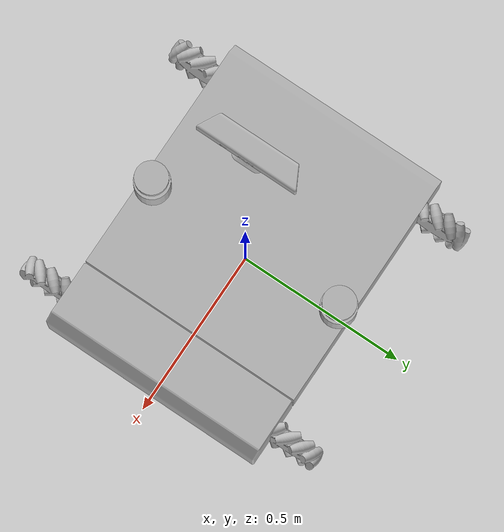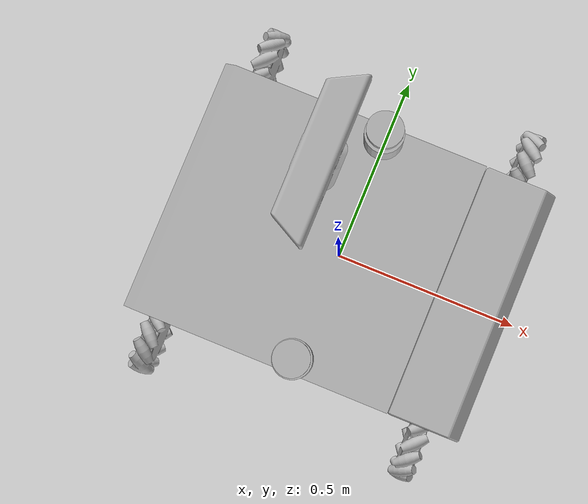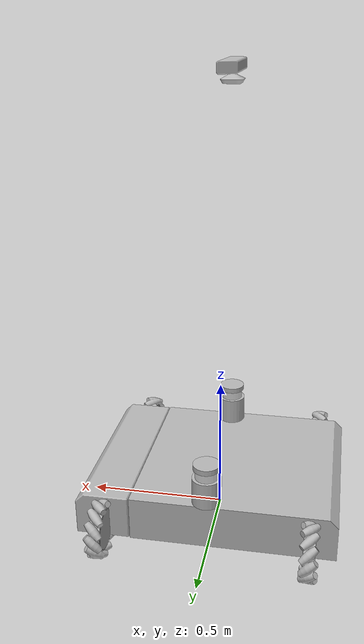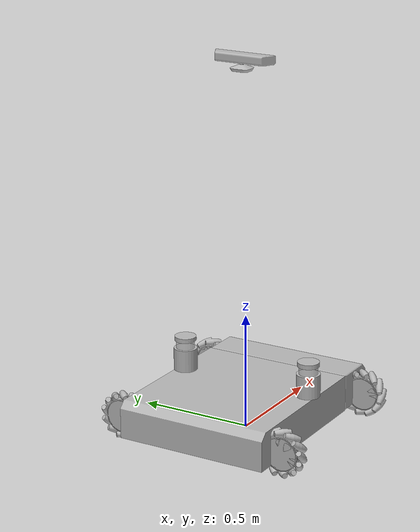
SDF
<?xml version="1.0" ?>
<sdf version="1.6">
	<model name="omnivelma">
		<plugin name="omnivelma" filename="libomnivelma.so"/>
		<pose>0 0 0.1035 0 0 0</pose>
		<static>false</static>

		<!--Baza całości-->
		<link name="base">
			<pose>-0.081 0 0.019 0 0 0</pose>
			<collision name="base_collision">
				<geometry>
					<mesh>
						<uri>model://omnivelma/meshes/collider/base.dae</uri>
					</mesh>
				</geometry>
			</collision>
			<inertial>
				<mass>60</mass>
				<inertia>
					<ixx>2.94</ixx>
					<ixy>0</ixy>
					<ixz>0</ixz>
					<iyy>2.72</iyy>
					<iyz>0</iyz>
					<izz>5.40</izz>
				</inertia>
			</inertial>
			<visual name="base_visual">
				<geometry>
					<mesh>
						<uri>model://omnivelma/meshes/visual/base.dae</uri>
					</mesh>
				</geometry>
				<material>
					<script>
						<uri>model://omnivelma/materials/omnivelma.material</uri>
						<name>omnivelma/base</name>
					</script>
				</material>
			</visual>
		</link>

		<!-- Ruchomy przód -->
		<link name="front">
			<pose>0.364 0 0.018 0 0 0</pose>
			<collision name="front_collision">
				<geometry>
					<mesh>
						<uri>model://omnivelma/meshes/collider/front.dae</uri>
					</mesh>
				</geometry>
			</collision>
			<inertial>
				<mass>15</mass>
				<inertia>
					<ixx>0.7351</ixx>
					<ixy>0</ixy>
					<ixz>0</ixz>
					<iyy>0.0771</iyy>
					<iyz>0</iyz>
					<izz>0.7483</izz>
				</inertia>
			</inertial>
			<visual name="front_visual">
				<geometry>
					<mesh>
						<uri>model://omnivelma/meshes/visual/front.dae</uri>
					</mesh>
				</geometry>
				<material>
					<script>
						<uri>model://omnivelma/materials/omnivelma.material</uri>
						<name>omnivelma/base</name>
					</script>
				</material>
			</visual>
		</link>

		<!-- Czujniki laserowe (TODO pozycje do dokładniejszego dopracowania)-->
		<include>
			<uri>model://monokl</uri>
			<name>monokl_r</name>
			<pose>0 -0.3 0.176 0 0 -3.141592</pose>
		</include>
		<include>
			<uri>model://monokl</uri>
			<name>monokl_l</name>
			<pose>0 0.3 0.176 0 0 0</pose>
		</include>
		<joint name="monokl_r_fix" type="fixed">
			<parent>base</parent>
			<child>monokl_r::base</child>
		</joint>
		<joint name="monokl_l_fix" type="fixed">
			<parent>base</parent>
			<child>monokl_l::base</child>
		</joint>

		<!-- Czujnik inercji -->
		<include>
			<uri>model://wewucho</uri>
			<name>wewucho</name>
			<pose>0 0 0 0 0 0</pose>
		</include>
		<joint name="wewucho_fix" type="fixed">
			<parent>base</parent>
			<child>wewucho::base</child>
		</joint>

		<!-- Koła wirtualne -->
		<link name="wheel_rr">
			<pose>-0.36 -0.38 0 0 0 0</pose>
			<collision name="wheel_rr_collision">
				<geometry>
					<sphere>
						<radius>0.1016</radius>
					</sphere>
				</geometry>
				<surface>
					<friction>
						<ode>
							<mu>0.95</mu>
							<mu2>0.5</mu2>
							<fdir1>0.707106781186548 -0.707106781186548 0</fdir1>
							<slip1>0.001</slip1>
							<slip2>0.1</slip2>
						</ode>
						<bullet>
							<friction>1</friction>
							<friction2>0</friction2>
							<fdir1>0.707106781186548 -0.707106781186548 0</fdir1>
							<rolling_friction>0</rolling_friction>
						</bullet>
					</friction>
				</surface>
			</collision>
			<inertial>
				<mass>1.6</mass>
				<inertia>
					<ixx>0.004738485</ixx>
					<ixy>0</ixy>
					<ixz>0</ixz>
					<iyy>0.008</iyy>
					<iyz>0</iyz>
					<izz>0.004738485</izz>
				</inertia>
			</inertial>
			<visual name="wheel_rr_middle">
				<geometry>
					<mesh>
						<uri>model://omnivelma/meshes/visual/wheel.dae</uri>
					</mesh>
				</geometry>
				<material>
					<script>
						<uri>model://omnivelma/materials/omnivelma.material</uri>
						<name>omnivelma/wheels</name>
					</script>
				</material>
			</visual>
			<visual name="wheel_rr_rollers">
				<geometry>
					<mesh>
						<uri>model://omnivelma/meshes/visual/wheel_l.dae</uri>
					</mesh>
				</geometry>
				<material>
					<script>
						<uri>model://omnivelma/materials/omnivelma.material</uri>
						<name>omnivelma/rollers</name>
					</script>
				</material>
			</visual>
		</link>

		<link name="wheel_rl">
			<pose>-0.36 0.38 0 0 0 0</pose>
			<collision name="wheel_rl_collision">
				<geometry>
					<sphere>
						<radius>0.1016</radius>
					</sphere>
				</geometry>
				<surface>
					<friction>
						<ode>
							<mu>0.95</mu>
							<mu2>0.5</mu2>
							<fdir1>0.707106781186548 0.707106781186548 0</fdir1>
							<slip1>0.001</slip1>
							<slip2>0.1</slip2>
						</ode>
						<bullet>
							<friction>1</friction>
							<friction2>0</friction2>
							<fdir1>0.707106781186548 0.707106781186548 0</fdir1>
							<rolling_friction>0</rolling_friction>
						</bullet>
					</friction>
				</surface>
			</collision>
			<inertial>
				<mass>1.6</mass>
				<inertia>
					<ixx>0.004738485</ixx>
					<ixy>0</ixy>
					<ixz>0</ixz>
					<iyy>0.008</iyy>
					<iyz>0</iyz>
					<izz>0.004738485</izz>
				</inertia>
			</inertial>
			<visual name="wheel_rl_middle">
				<geometry>
					<mesh>
						<uri>model://omnivelma/meshes/visual/wheel.dae</uri>
					</mesh>
				</geometry>
				<material>
					<script>
						<uri>model://omnivelma/materials/omnivelma.material</uri>
						<name>omnivelma/wheels</name>
					</script>
				</material>
			</visual>
			<visual name="wheel_rl_rollers">
				<geometry>
					<mesh>
						<uri>model://omnivelma/meshes/visual/wheel_r.dae</uri>
					</mesh>
				</geometry>
				<material>
					<script>
						<uri>model://omnivelma/materials/omnivelma.material</uri>
						<name>omnivelma/rollers</name>
					</script>
				</material>
			</visual>
		</link>

		<link name="wheel_fr">
			<pose>0.36 -0.38 0 0 0 0</pose>
			<collision name="wheel_fr_collision">
				<geometry>
					<sphere>
						<radius>0.1016</radius>
					</sphere>
				</geometry>
				<surface>
					<friction>
						<ode>
							<mu>0.95</mu>
							<mu2>0.5</mu2>
							<fdir1>-0.707106781186548 -0.707106781186548 0</fdir1>
							<slip1>0.001</slip1>
							<slip2>0.1</slip2>
						</ode>
						<bullet>
							<friction>1</friction>
							<friction2>0</friction2>
							<fdir1>-0.707106781186548 -0.707106781186548 0</fdir1>
							<rolling_friction>0</rolling_friction>
						</bullet>
					</friction>
				</surface>
			</collision>
			<inertial>
				<mass>1.6</mass>
				<inertia>
					<ixx>0.004738485</ixx>
					<ixy>0</ixy>
					<ixz>0</ixz>
					<iyy>0.008</iyy>
					<iyz>0</iyz>
					<izz>0.004738485</izz>
				</inertia>
			</inertial>
			<visual name="wheel_fr_middle">
				<geometry>
					<mesh>
						<uri>model://omnivelma/meshes/visual/wheel.dae</uri>
					</mesh>
				</geometry>
				<material>
					<script>
						<uri>model://omnivelma/materials/omnivelma.material</uri>
						<name>omnivelma/wheels</name>
					</script>
				</material>
			</visual>
			<visual name="wheel_fr_rollers">
				<geometry>
					<mesh>
						<uri>model://omnivelma/meshes/visual/wheel_r.dae</uri>
					</mesh>
				</geometry>
				<material>
					<script>
						<uri>model://omnivelma/materials/omnivelma.material</uri>
						<name>omnivelma/rollers</name>
					</script>
				</material>
			</visual>
		</link>

		<link name="wheel_fl">
			<pose>0.36 0.38 0 0 0 0</pose>
			<collision name="wheel_fl_collision">
				<geometry>
					<sphere>
						<radius>0.1016</radius>
					</sphere>
				</geometry>
				<surface>
					<friction>
						<ode>
							<mu>0.95</mu>
							<mu2>0.5</mu2>
							<fdir1>-0.707106781186548 0.707106781186548 0</fdir1>
							<slip1>0.001</slip1>
							<slip2>0.1</slip2>
						</ode>
						<bullet>
							<friction>1</friction>
							<friction2>0</friction2>
							<fdir1>-0.707106781186548 0.707106781186548 0</fdir1>
							<rolling_friction>0</rolling_friction>
						</bullet>
					</friction>
				</surface>
			</collision>
			<inertial>
				<mass>1.6</mass>
				<inertia>
					<ixx>0.004738485</ixx>
					<ixy>0</ixy>
					<ixz>0</ixz>
					<iyy>0.008</iyy>
					<iyz>0</iyz>
					<izz>0.004738485</izz>
				</inertia>
			</inertial>
			<visual name="wheel_fl_middle">
				<geometry>
					<mesh>
						<uri>model://omnivelma/meshes/visual/wheel.dae</uri>
					</mesh>
				</geometry>
				<material>
					<script>
						<uri>model://omnivelma/materials/omnivelma.material</uri>
						<name>omnivelma/wheels</name>
					</script>
				</material>
			</visual>
			<visual name="wheel_fl_rollers">
				<geometry>
					<mesh>
						<uri>model://omnivelma/meshes/visual/wheel_l.dae</uri>
					</mesh>
				</geometry>
				<material>
					<script>
						<uri>model://omnivelma/materials/omnivelma.material</uri>
						<name>omnivelma/rollers</name>
					</script>
				</material>
			</visual>
		</link>

		<!-- Środkowy przegub (zawias) -->
		<joint name="middle_joint" type="revolute">
			<parent>base</parent>
			<child>front</child>
			<!-- Pozycja względem dziecka -->
			<pose>-0.1 0 -0.018 0 0 0</pose>
			<axis>
				<xyz>1 0 0</xyz>
			</axis>
		</joint>

		<!-- Przeguby kół (motory) -->
		<joint name="motor_rr" type="revolute">
			<parent>base</parent>
			<child>wheel_rr</child>
			<pose>0 0.036 0 0 0 0</pose>
			<axis>
				<xyz>0 1 0</xyz>
			</axis>
		</joint>

		<joint name="motor_rl" type="revolute">
			<parent>base</parent>
			<child>wheel_rl</child>
			<pose>0 -0.036 0 0 0 0</pose>
			<axis>
				<xyz>0 1 0</xyz>
			</axis>
		</joint>

		<joint name="motor_fr" type="revolute">
			<parent>front</parent>
			<child>wheel_fr</child>
			<pose>0 0.036 0 0 0 0</pose>
			<axis>
				<xyz>0 1 0</xyz>
			</axis>
		</joint>

		<joint name="motor_fl" type="revolute">
			<parent>front</parent>
			<child>wheel_fl</child>
			<pose>0 -0.036 0 0 0 0</pose>
			<axis>
				<xyz>0 1 0</xyz>
			</axis>
		</joint>

	<!--KINECT SUBMODEL SECTION-->
	    <include>
			<uri>model://ownKinect</uri>
			<pose>0 0 1.5 0 0 0</pose>
		</include>
		<joint name="kinect_rotator" type="revolute">
			<parent>base</parent>
			<child>ownKinect::kinect_base</child>
			<pose>-0.031 0 -0.055 0 0 0</pose>
			<axis>
				<xyz>0 0 1</xyz>
			</axis>
		</joint>
	</model>
</sdf>

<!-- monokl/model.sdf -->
<sdf version="1.6">
    <model name="monokl">

        <!--Korpus-->
        <link name="base">
            <pose>0 0 0 0 0 0</pose>
            <inertial>
				<mass>1.1</mass>
				<inertia>
					<ixx>0.00283314166</ixx>
					<ixy>0</ixy>
					<ixz>0</ixz>
					<iyy>0.00283314166</iyy>
					<iyz>0</iyz>
					<izz>0.00143055</izz>
				</inertia>
			</inertial>
            <collision name="base_collision">
				<pose>0 0 0 0 0 0</pose>
                <geometry>
					<cylinder>
						<radius>0.051</radius>
						<length>0.152</length>
					</cylinder>
                </geometry>
            </collision>
			<visual name="base_visual">
				<pose>0 0 -0.027 0 0 0</pose>
				<geometry>
					<cylinder>
						<radius>0.051</radius>
						<length>0.098</length>
					</cylinder>
				</geometry>
				<material>
					<script>
						<uri>model://monokl/materials/monokl.material</uri>
						<name>monokl/base</name>
					</script>
				</material>
			</visual>
			<visual name="cap_visual">
				<pose>0 0 0.066 0 0 0</pose>
				<geometry>
					<cylinder>
						<radius>0.047</radius>
						<length>0.019</length>
					</cylinder>
				</geometry>
				<material>
					<script>
						<uri>model://monokl/materials/monokl.material</uri>
						<name>monokl/base</name>
					</script>
				</material>
			</visual>
        </link>
		<link name="heart">
			<pose>0 0 0.039 0 0 0</pose>
			<inertial>
				<mass>0.05</mass>
				<inertia>
					<ixx>0.0000008333</ixx>
					<ixy>0</ixy>
					<ixz>0</ixz>
					<iyy>0.0000008333</iyy>
					<iyz>0</iyz>
					<izz>0.0000008333</izz>
				</inertia>
			</inertial>
			<visual name="glass_visual">
				<geometry>
					<cylinder>
						<radius>0.040</radius>
						<length>0.040</length>
					</cylinder>
				</geometry>
				<material>
					<script>
						<uri>model://monokl/materials/monokl.material</uri>
						<name>monokl/glass</name>
					</script>
				</material>
			</visual>
			<sensor name="monokl" type="ray">
				<update_rate>50</update_rate>
				<visualize>false</visualize>
				<topic>/monokl</topic>
				<plugin name="monokl" filename="libmonokl.so"/>
				<ray>
					<scan>
						<horizontal>
							<!-- tryb 50Hz, 270°, próbka co 0,5° -->
							<samples>540</samples>
							<resolution>1</resolution>
							<min_angle>-0.7853982</min_angle>
							<max_angle>3.926991</max_angle>
						</horizontal>
					</scan>
					<range>
						<min>0.06</min>
						<max>20</max>
						<!-- TODO rozdzielczość liniowa? -->
					</range>
					<noise>
						<type>gaussian</type>
						<mean>0.0</mean>
						<stddev>0.012</stddev>
					</noise>
				</ray>
			</sensor>
		</link>
		<joint name="heart_fix" type="fixed">
			<parent>base</parent>
			<child>heart</child>
		</joint>
    </model>
</sdf>

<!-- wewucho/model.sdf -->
<sdf version="1.6">
	<model name="wewucho">

		<!--Korpus-->
		<link name="base">
			<pose>0 0 0 0 0 0</pose>
			<visual name="base_visual">
				<pose>0 0 0 0 0 0</pose>
				<geometry>
					<box>
						<size>0.02 0.02 0.02</size>
					</box>
				</geometry>
				<material>
					<script>
						<uri>model://wewucho/materials/wewucho.material</uri>
						<name>wewucho/base</name>
					</script>
				</material>
			</visual>
			<sensor name="wewucho" type="imu">
				<update_rate>1000</update_rate>
				<visualize>false</visualize>
				<topic>/wewucho</topic>
				<plugin name="wewucho" filename="libwewucho.so"/>
				<imu>
					<!-- NOTE Wartości wyznaczone eksperymentalnie -->
					<angular_velocity>
						<x>
							<noise type="gaussian">
								<mean>0.0</mean>
								<stddev>0.003</stddev>
							</noise>
						</x>
						<y>
							<noise type="gaussian">
								<mean>0.0</mean>
								<stddev>0.003</stddev>
							</noise>
						</y>
						<z>
							<noise type="gaussian">
								<mean>0.0</mean>
								<stddev>0.003</stddev>
							</noise>
						</z>
					</angular_velocity>
					<linear_acceleration>
						<x>
							<noise type="gaussian">
								<mean>0.0</mean>
								<stddev>0.1</stddev>
							</noise>
						</x>
						<y>
							<noise type="gaussian">
								<mean>0.0</mean>
								<stddev>0.1</stddev>
							</noise>
						</y>
						<z>
							<noise type="gaussian">
								<mean>0.0</mean>
								<stddev>0.1</stddev>
							</noise>
						</z>
					</linear_acceleration>
				</imu>
			</sensor>
		</link>
	</model>
</sdf>

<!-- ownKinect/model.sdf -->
<sdf version="1.5">
  <model name="ownKinect">
    <link name="kinect_base">
      <inertial>
        <mass>0.1</mass>
      </inertial>
      <collision name="collision">
        <geometry>
          <box>
            <size>0.073000 0.276000 0.072000</size>
          </box>
        </geometry>
      </collision>
      <visual name="visual">
        <cast_shadows>0</cast_shadows>
        <geometry>
          <mesh>
            <uri>model://kinect/meshes/kinect.dae</uri>
          </mesh>
        </geometry>
      </visual>
      <sensor name="camera" type="depth">
        <update_rate>20</update_rate>
        <camera>
          <horizontal_fov>1.094321441</horizontal_fov>
          <image>
            <width>1024</width>
            <height>768</height>
            <format>R8G8B8</format>
          </image>
          <clip>
            <near>0.4</near>
            <far>6.5</far>
          </clip>
        </camera>
      <plugin name="camera_controller" filename="libgazebo_ros_openni_kinect.so">
        <baseline>0.2</baseline>
        <alwaysOn>true</alwaysOn>
        <updateRate>0.0</updateRate>
        <cameraName>camera</cameraName>
        <imageTopicName>rgb/image_raw</imageTopicName>
        <depthImageTopicName>depth/image_raw</depthImageTopicName>
        <cameraInfoTopicName>rgb/camera_info</cameraInfoTopicName>
        <depthImageInfoTopicName>depth/camera_info</depthImageInfoTopicName>
        <pointCloudTopicName>depth/points</pointCloudTopicName>
        <frameName>camera_link</frameName>
        <pointCloudCutoff>0.4</pointCloudCutoff>
        <hackBaseline>0.07</hackBaseline>
        <distortionK1>0</distortionK1>
        <distortionK2>0</distortionK2>
        <distortionK3>0</distortionK3>
        <distortionT1>0</distortionT1>
        <distortionT2>0</distortionT2>
        <CxPrime>0</CxPrime>
        <Cx>0</Cx>
        <Cy>0</Cy>
        <focalLength>0</focalLength>
        <hackBaseline>0</hackBaseline>
      </plugin>
      </sensor>
    </link>
  </model>
</sdf>
